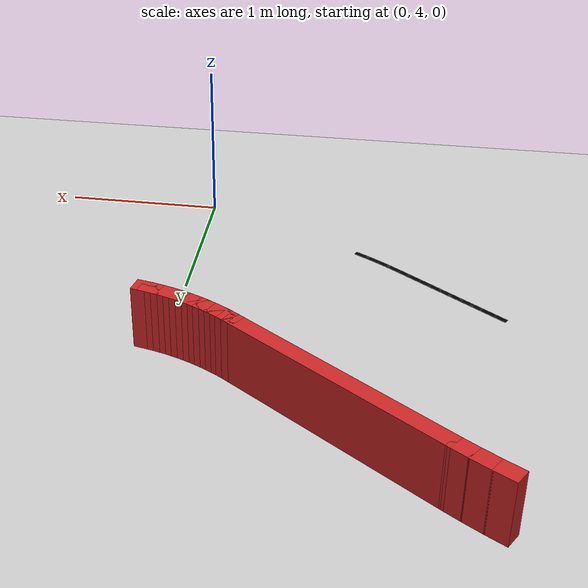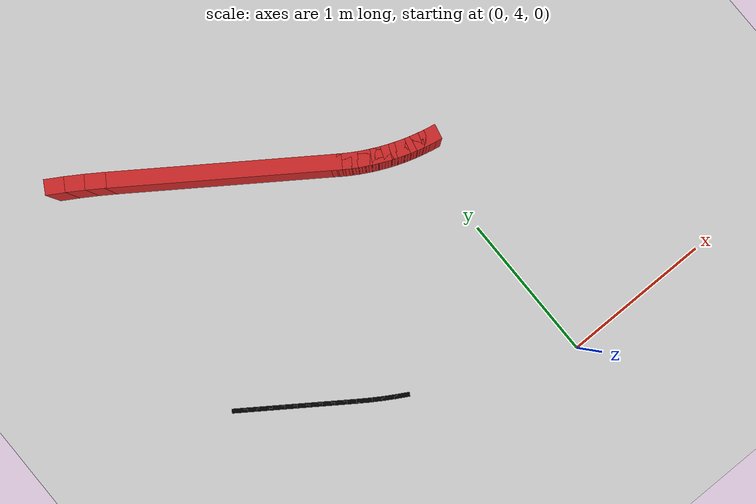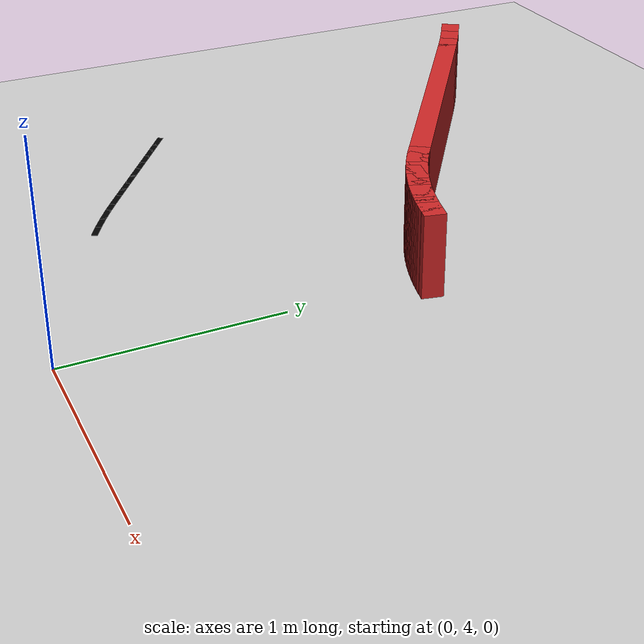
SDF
<sdf version="1.6">
 <world name="new_race_track">
  <include><uri>model://ground_plane</uri></include>
  <include><uri>model://sun</uri></include>
  <model name="race_track">
   <static>true</static>
   <link name="wall_link_745">
    <collision name="c"><geometry><box><size>0.1314 0.1 0.4</size></box></geometry></collision>
    <visual name="v">
     <geometry><box><size>0.1314 0.1 0.4</size></box></geometry>
     <material><ambient>0.8 0.15 0.15 1</ambient><diffuse>0.8 0.15 0.15 1</diffuse></material>
    </visual>
    <pose>0.0958 5.6245 0.200 0 0 2.9244</pose>
   </link>
   <link name="wall_link_746">
    <collision name="c"><geometry><box><size>0.1314 0.1 0.4</size></box></geometry></collision>
    <visual name="v">
     <geometry><box><size>0.1314 0.1 0.4</size></box></geometry>
     <material><ambient>0.8 0.15 0.15 1</ambient><diffuse>0.8 0.15 0.15 1</diffuse></material>
    </visual>
    <pose>0.0561 5.6338 0.200 0 0 2.8972</pose>
   </link>
   <link name="wall_link_747">
    <collision name="c"><geometry><box><size>0.1314 0.1 0.4</size></box></geometry></collision>
    <visual name="v">
     <geometry><box><size>0.1314 0.1 0.4</size></box></geometry>
     <material><ambient>0.8 0.15 0.15 1</ambient><diffuse>0.8 0.15 0.15 1</diffuse></material>
    </visual>
    <pose>0.0168 5.6442 0.200 0 0 2.8701</pose>
   </link>
   <link name="wall_link_748">
    <collision name="c"><geometry><box><size>0.1314 0.1 0.4</size></box></geometry></collision>
    <visual name="v">
     <geometry><box><size>0.1314 0.1 0.4</size></box></geometry>
     <material><ambient>0.8 0.15 0.15 1</ambient><diffuse>0.8 0.15 0.15 1</diffuse></material>
    </visual>
    <pose>-0.0223 5.6556 0.200 0 0 2.8429</pose>
   </link>
   <link name="wall_link_749">
    <collision name="c"><geometry><box><size>0.1314 0.1 0.4</size></box></geometry></collision>
    <visual name="v">
     <geometry><box><size>0.1314 0.1 0.4</size></box></geometry>
     <material><ambient>0.8 0.15 0.15 1</ambient><diffuse>0.8 0.15 0.15 1</diffuse></material>
    </visual>
    <pose>-0.0610 5.6681 0.200 0 0 2.8158</pose>
   </link>
   <link name="wall_link_750">
    <collision name="c"><geometry><box><size>0.1314 0.1 0.4</size></box></geometry></collision>
    <visual name="v">
     <geometry><box><size>0.1314 0.1 0.4</size></box></geometry>
     <material><ambient>0.8 0.15 0.15 1</ambient><diffuse>0.8 0.15 0.15 1</diffuse></material>
    </visual>
    <pose>-0.0994 5.6817 0.200 0 0 2.7886</pose>
   </link>
   <link name="wall_link_751">
    <collision name="c"><geometry><box><size>0.1314 0.1 0.4</size></box></geometry></collision>
    <visual name="v">
     <geometry><box><size>0.1314 0.1 0.4</size></box></geometry>
     <material><ambient>0.8 0.15 0.15 1</ambient><diffuse>0.8 0.15 0.15 1</diffuse></material>
    </visual>
    <pose>-0.1374 5.6963 0.200 0 0 2.7615</pose>
   </link>
   <link name="wall_link_752">
    <collision name="c"><geometry><box><size>0.1314 0.1 0.4</size></box></geometry></collision>
    <visual name="v">
     <geometry><box><size>0.1314 0.1 0.4</size></box></geometry>
     <material><ambient>0.8 0.15 0.15 1</ambient><diffuse>0.8 0.15 0.15 1</diffuse></material>
    </visual>
    <pose>-0.1750 5.7119 0.200 0 0 2.7343</pose>
   </link>
   <link name="wall_link_753">
    <collision name="c"><geometry><box><size>0.1314 0.1 0.4</size></box></geometry></collision>
    <visual name="v">
     <geometry><box><size>0.1314 0.1 0.4</size></box></geometry>
     <material><ambient>0.8 0.15 0.15 1</ambient><diffuse>0.8 0.15 0.15 1</diffuse></material>
    </visual>
    <pose>-0.2122 5.7285 0.200 0 0 2.7072</pose>
   </link>
   <link name="wall_link_754">
    <collision name="c"><geometry><box><size>0.1314 0.1 0.4</size></box></geometry></collision>
    <visual name="v">
     <geometry><box><size>0.1314 0.1 0.4</size></box></geometry>
     <material><ambient>0.8 0.15 0.15 1</ambient><diffuse>0.8 0.15 0.15 1</diffuse></material>
    </visual>
    <pose>-0.2489 5.7462 0.200 0 0 2.6801</pose>
   </link>
   <link name="wall_link_755">
    <collision name="c"><geometry><box><size>0.1314 0.1 0.4</size></box></geometry></collision>
    <visual name="v">
     <geometry><box><size>0.1314 0.1 0.4</size></box></geometry>
     <material><ambient>0.8 0.15 0.15 1</ambient><diffuse>0.8 0.15 0.15 1</diffuse></material>
    </visual>
    <pose>-0.2851 5.7648 0.200 0 0 2.6529</pose>
   </link>
   <link name="wall_link_756">
    <collision name="c"><geometry><box><size>0.1314 0.1 0.4</size></box></geometry></collision>
    <visual name="v">
     <geometry><box><size>0.1314 0.1 0.4</size></box></geometry>
     <material><ambient>0.8 0.15 0.15 1</ambient><diffuse>0.8 0.15 0.15 1</diffuse></material>
    </visual>
    <pose>-0.3208 5.7844 0.200 0 0 2.6258</pose>
   </link>
   <link name="wall_link_757">
    <collision name="c"><geometry><box><size>0.1314 0.1 0.4</size></box></geometry></collision>
    <visual name="v">
     <geometry><box><size>0.1314 0.1 0.4</size></box></geometry>
     <material><ambient>0.8 0.15 0.15 1</ambient><diffuse>0.8 0.15 0.15 1</diffuse></material>
    </visual>
    <pose>-0.3559 5.8049 0.200 0 0 2.5986</pose>
   </link>
   <link name="wall_link_758">
    <collision name="c"><geometry><box><size>0.1314 0.1 0.4</size></box></geometry></collision>
    <visual name="v">
     <geometry><box><size>0.1314 0.1 0.4</size></box></geometry>
     <material><ambient>0.8 0.15 0.15 1</ambient><diffuse>0.8 0.15 0.15 1</diffuse></material>
    </visual>
    <pose>-0.3905 5.8265 0.200 0 0 2.5715</pose>
   </link>
   <link name="wall_link_759">
    <collision name="c"><geometry><box><size>0.1314 0.1 0.4</size></box></geometry></collision>
    <visual name="v">
     <geometry><box><size>0.1314 0.1 0.4</size></box></geometry>
     <material><ambient>0.8 0.15 0.15 1</ambient><diffuse>0.8 0.15 0.15 1</diffuse></material>
    </visual>
    <pose>-0.4245 5.8489 0.200 0 0 2.5443</pose>
   </link>
   <link name="merged_wall_link_760">
    <pose>-1.0312 6.2732 0.2000 0.0000 0.0000 2.5307</pose>
    <collision name="c"><geometry><box><size>1.4899 0.1000 0.4000</size></box></geometry></collision>
    <visual name="v">
     <geometry><box><size>1.4899 0.1000 0.4000</size></box></geometry>
     <material><ambient>0.8 0.15 0.15 1</ambient><diffuse>0.8 0.15 0.15 1</diffuse></material>
    </visual>
   </link>
   <link name="wall_link_761">
    <collision name="c"><geometry><box><size>0.1333 0.1 0.4</size></box></geometry></collision>
    <visual name="v">
     <geometry><box><size>0.1333 0.1 0.4</size></box></geometry>
     <material><ambient>0.8 0.15 0.15 1</ambient><diffuse>0.8 0.15 0.15 1</diffuse></material>
    </visual>
    <pose>-1.6726 6.7214 0.200 0 0 2.5446</pose>
   </link>
   <link name="wall_link_762">
    <collision name="c"><geometry><box><size>0.1333 0.1 0.4</size></box></geometry></collision>
    <visual name="v">
     <geometry><box><size>0.1333 0.1 0.4</size></box></geometry>
     <material><ambient>0.8 0.15 0.15 1</ambient><diffuse>0.8 0.15 0.15 1</diffuse></material>
    </visual>
    <pose>-1.7769 6.7902 0.200 0 0 2.5724</pose>
   </link>
   <link name="wall_link_763">
    <collision name="c"><geometry><box><size>0.1333 0.1 0.4</size></box></geometry></collision>
    <visual name="v">
     <geometry><box><size>0.1333 0.1 0.4</size></box></geometry>
     <material><ambient>0.8 0.15 0.15 1</ambient><diffuse>0.8 0.15 0.15 1</diffuse></material>
    </visual>
    <pose>-1.8830 6.8561 0.200 0 0 2.6001</pose>
   </link>
   <link name="line_link_1452">
    <visual name="v">
     <geometry><box><size>0.1014 0.03 0.002</size></box></geometry>
     <material><ambient>0 0 0 1</ambient><diffuse>0 0 0 1</diffuse></material>
    </visual>
    <pose>-1.0607 4.4796 0.002 0 0 2.6258</pose>
   </link>
   <link name="line_link_1453">
    <visual name="v">
     <geometry><box><size>0.1014 0.03 0.002</size></box></geometry>
     <material><ambient>0 0 0 1</ambient><diffuse>0 0 0 1</diffuse></material>
    </visual>
    <pose>-1.1310 4.5207 0.002 0 0 2.5986</pose>
   </link>
   <link name="line_link_1454">
    <visual name="v">
     <geometry><box><size>0.1014 0.03 0.002</size></box></geometry>
     <material><ambient>0 0 0 1</ambient><diffuse>0 0 0 1</diffuse></material>
    </visual>
    <pose>-1.2001 4.5637 0.002 0 0 2.5715</pose>
   </link>
   <link name="line_link_1455">
    <visual name="v">
     <geometry><box><size>0.1014 0.03 0.002</size></box></geometry>
     <material><ambient>0 0 0 1</ambient><diffuse>0 0 0 1</diffuse></material>
    </visual>
    <pose>-1.2681 4.6086 0.002 0 0 2.5443</pose>
   </link>
   <link name="line_link_1456">
    <visual name="v">
     <geometry><box><size>0.1000 0.03 0.002</size></box></geometry>
     <material><ambient>0 0 0 1</ambient><diffuse>0 0 0 1</diffuse></material>
    </visual>
    <pose>-1.3345 4.6544 0.002 0 0 2.5307</pose>
   </link>
   <link name="line_link_1457">
    <visual name="v">
     <geometry><box><size>0.1000 0.03 0.002</size></box></geometry>
     <material><ambient>0 0 0 1</ambient><diffuse>0 0 0 1</diffuse></material>
    </visual>
    <pose>-1.4001 4.7003 0.002 0 0 2.5307</pose>
   </link>
   <link name="line_link_1458">
    <visual name="v">
     <geometry><box><size>0.1000 0.03 0.002</size></box></geometry>
     <material><ambient>0 0 0 1</ambient><diffuse>0 0 0 1</diffuse></material>
    </visual>
    <pose>-1.4656 4.7462 0.002 0 0 2.5307</pose>
   </link>
   <link name="line_link_1459">
    <visual name="v">
     <geometry><box><size>0.1000 0.03 0.002</size></box></geometry>
     <material><ambient>0 0 0 1</ambient><diffuse>0 0 0 1</diffuse></material>
    </visual>
    <pose>-1.5311 4.7921 0.002 0 0 2.5307</pose>
   </link>
   <link name="line_link_1460">
    <visual name="v">
     <geometry><box><size>0.1000 0.03 0.002</size></box></geometry>
     <material><ambient>0 0 0 1</ambient><diffuse>0 0 0 1</diffuse></material>
    </visual>
    <pose>-1.5967 4.8380 0.002 0 0 2.5307</pose>
   </link>
   <link name="line_link_1461">
    <visual name="v">
     <geometry><box><size>0.1000 0.03 0.002</size></box></geometry>
     <material><ambient>0 0 0 1</ambient><diffuse>0 0 0 1</diffuse></material>
    </visual>
    <pose>-1.6622 4.8839 0.002 0 0 2.5307</pose>
   </link>
   <link name="line_link_1462">
    <visual name="v">
     <geometry><box><size>0.1000 0.03 0.002</size></box></geometry>
     <material><ambient>0 0 0 1</ambient><diffuse>0 0 0 1</diffuse></material>
    </visual>
    <pose>-1.7277 4.9298 0.002 0 0 2.5307</pose>
   </link>
   <link name="line_link_1463">
    <visual name="v">
     <geometry><box><size>0.1000 0.03 0.002</size></box></geometry>
     <material><ambient>0 0 0 1</ambient><diffuse>0 0 0 1</diffuse></material>
    </visual>
    <pose>-1.7933 4.9757 0.002 0 0 2.5307</pose>
   </link>
   <link name="line_link_1464">
    <visual name="v">
     <geometry><box><size>0.1000 0.03 0.002</size></box></geometry>
     <material><ambient>0 0 0 1</ambient><diffuse>0 0 0 1</diffuse></material>
    </visual>
    <pose>-1.8588 5.0215 0.002 0 0 2.5307</pose>
   </link>
   <link name="line_link_1465">
    <visual name="v">
     <geometry><box><size>0.1000 0.03 0.002</size></box></geometry>
     <material><ambient>0 0 0 1</ambient><diffuse>0 0 0 1</diffuse></material>
    </visual>
    <pose>-1.9243 5.0674 0.002 0 0 2.5307</pose>
   </link>
  </model>
 </world>
</sdf>
